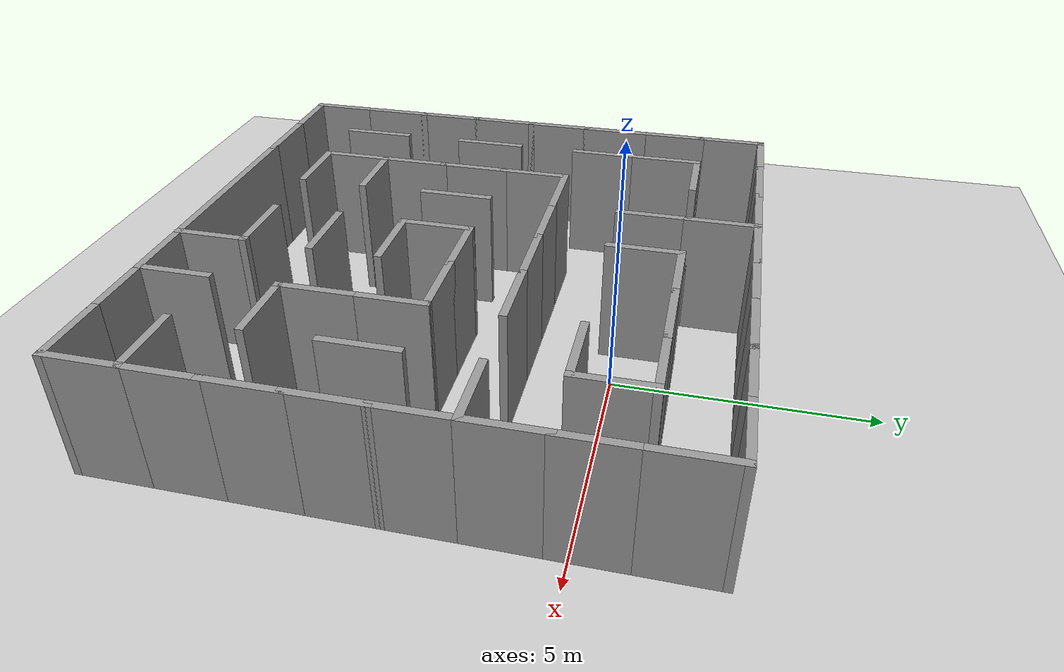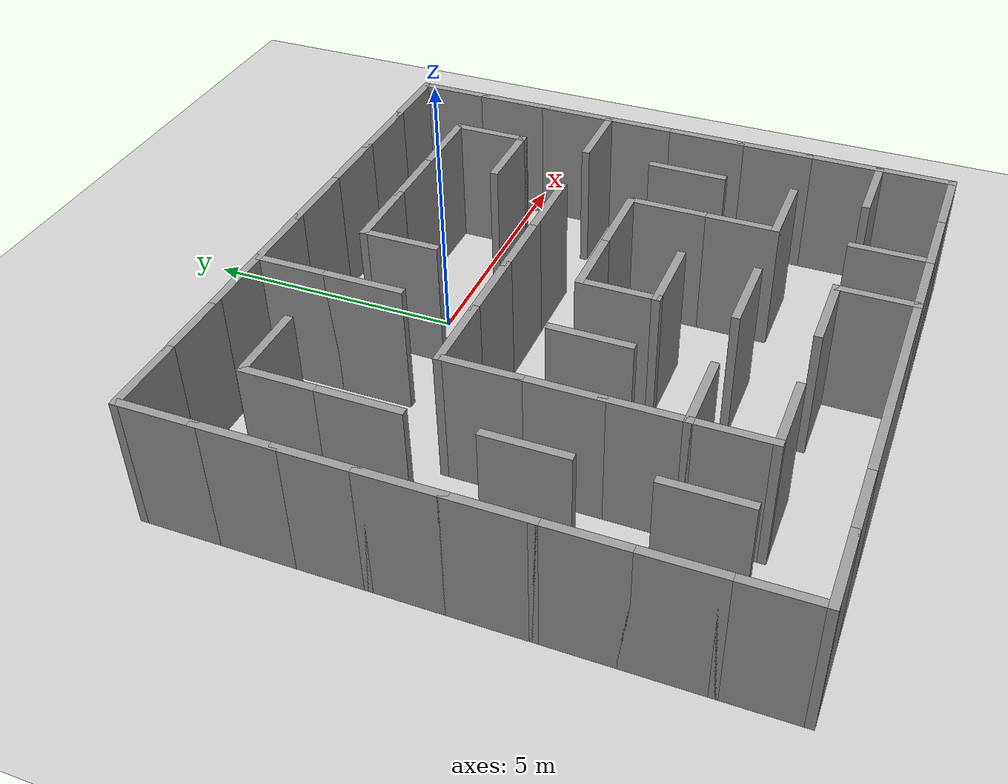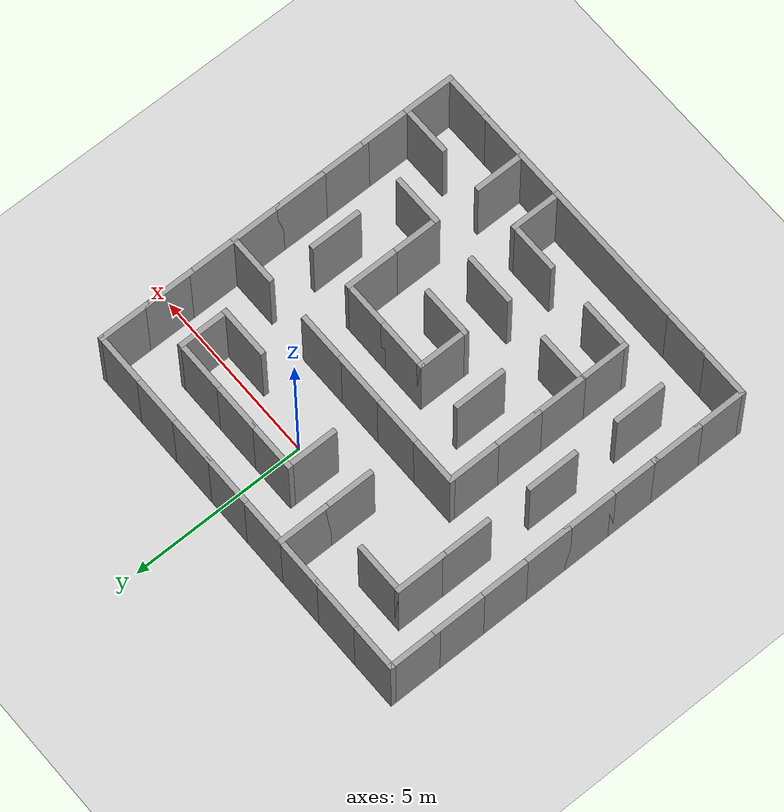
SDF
<sdf version="1.7">
 <world name="default">
  <model name="ground_plane">
   <static>1</static>
   <link name="link">
    <collision name="collision">
     <geometry><plane><normal>0 0 1</normal><size>100 100</size></plane></geometry>
     <surface><friction><ode><mu>100</mu><mu2>50</mu2></ode></friction></surface>
    </collision>
    <visual name="visual">
     <cast_shadows>0</cast_shadows>
     <geometry><plane><normal>0 0 1</normal><size>100 100</size></plane></geometry>
     <material>
      <script><uri>file://media/materials/scripts/gazebo.material</uri><name>Gazebo/Grey</name></script>
     </material>
    </visual>
   </link>
  </model>
  <light name="sun" type="directional">
   <pose>0 0 10 0 -0 0</pose>
   <diffuse>0.8 0.8 0.8 1</diffuse>
   <specular>0.2 0.2 0.2 1</specular>
   <attenuation>
    <range>1000</range>
    <constant>0.9</constant>
    <linear>0.01</linear>
    <quadratic>0.001</quadratic>
   </attenuation>
   <direction>-0.5 0.1 -0.9</direction>
   <spot><inner_angle>0</inner_angle><outer_angle>0</outer_angle><falloff>0</falloff></spot>
  </light>
  <scene><shadows>0</shadows><ambient>0.4 0.4 0.4 1</ambient><background>0.7 0.7 0.7 1</background></scene>
  <physics type="ode">
   <real_time_update_rate>1000</real_time_update_rate>
   <max_step_size>0.001</max_step_size>
   <real_time_factor>1</real_time_factor>
   <ode>
    <solver>
     <type>quick</type>
     <iters>150</iters>
     <precon_iters>0</precon_iters>
     <sor>1.4</sor>
     <use_dynamic_moi_rescaling>1</use_dynamic_moi_rescaling>
    </solver>
    <constraints>
     <cfm>1e-05</cfm>
     <erp>0.2</erp>
     <contact_max_correcting_vel>2000</contact_max_correcting_vel>
     <contact_surface_layer>0.01</contact_surface_layer>
    </constraints>
   </ode>
  </physics>
  <gravity>0 0 -9.8</gravity>
  <magnetic_field>6e-06 2.3e-05 -4.2e-05</magnetic_field>
  <atmosphere type="adiabatic"/>
  <audio><device>default</device></audio>
  <spherical_coordinates>
   <surface_model>EARTH_WGS84</surface_model>
   <latitude_deg>0</latitude_deg>
   <longitude_deg>0</longitude_deg>
   <elevation>0</elevation>
   <heading_deg>0</heading_deg>
  </spherical_coordinates>
  <model name="test_maze_v2">
   <pose>-1 -3 0 0 -0 0</pose>
   <link name="Wall_0">
    <collision name="Wall_0_Collision">
     <geometry><box><size>1.5 0.15 2.5</size></box></geometry>
     <pose>0 0 1.25 0 -0 0</pose>
    </collision>
    <visual name="Wall_0_Visual">
     <pose>0 0 1.25 0 -0 0</pose>
     <geometry><box><size>1.5 0.15 2.5</size></box></geometry>
     <material>
      <script><uri>file://media/materials/scripts/gazebo.material</uri><name>Gazebo/Grey</name></script>
      <ambient>1 1 1 1</ambient>
     </material>
     <meta><layer>0</layer></meta>
    </visual>
    <pose>0.675 -1.35 0 0 -0 3.14159</pose>
   </link>
   <link name="Wall_1">
    <collision name="Wall_1_Collision">
     <geometry><box><size>1.5 0.15 2.5</size></box></geometry>
     <pose>0 0 1.25 0 -0 0</pose>
    </collision>
    <visual name="Wall_1_Visual">
     <pose>0 0 1.25 0 -0 0</pose>
     <geometry><box><size>1.5 0.15 2.5</size></box></geometry>
     <material>
      <script><uri>file://media/materials/scripts/gazebo.material</uri><name>Gazebo/Grey</name></script>
      <ambient>1 1 1 1</ambient>
     </material>
     <meta><layer>0</layer></meta>
    </visual>
    <pose>-0 -0.675 0 0 -0 1.5708</pose>
   </link>
   <link name="Wall_10">
    <collision name="Wall_10_Collision">
     <geometry><box><size>1.5 0.15 2.5</size></box></geometry>
     <pose>0 0 1.25 0 -0 0</pose>
    </collision>
    <visual name="Wall_10_Visual">
     <pose>0 0 1.25 0 -0 0</pose>
     <geometry><box><size>1.5 0.15 2.5</size></box></geometry>
     <material>
      <script><uri>file://media/materials/scripts/gazebo.material</uri><name>Gazebo/Grey</name></script>
      <ambient>1 1 1 1</ambient>
     </material>
     <meta><layer>0</layer></meta>
    </visual>
    <pose>5.4 -0.675 0 0 -0 -1.5708</pose>
   </link>
   <link name="Wall_108">
    <collision name="Wall_108_Collision">
     <geometry><box><size>1.5 0.15 2.5</size></box></geometry>
     <pose>0 0 1.25 0 -0 0</pose>
    </collision>
    <visual name="Wall_108_Visual">
     <pose>0 0 1.25 0 -0 0</pose>
     <geometry><box><size>1.5 0.15 2.5</size></box></geometry>
     <material>
      <script><uri>file://media/materials/scripts/gazebo.material</uri><name>Gazebo/Grey</name></script>
      <ambient>1 1 1 1</ambient>
     </material>
     <meta><layer>0</layer></meta>
    </visual>
    <pose>-5.4 -0.652 0 0 -0 -1.5708</pose>
   </link>
   <link name="Wall_11">
    <collision name="Wall_11_Collision">
     <geometry><box><size>1.5 0.15 2.5</size></box></geometry>
     <pose>0 0 1.25 0 -0 0</pose>
    </collision>
    <visual name="Wall_11_Visual">
     <pose>0 0 1.25 0 -0 0</pose>
     <geometry><box><size>1.5 0.15 2.5</size></box></geometry>
     <material>
      <script><uri>file://media/materials/scripts/gazebo.material</uri><name>Gazebo/Grey</name></script>
      <ambient>1 1 1 1</ambient>
     </material>
     <meta><layer>0</layer></meta>
    </visual>
    <pose>5.4 -2.025 0 0 -0 -1.5708</pose>
   </link>
   <link name="Wall_113">
    <collision name="Wall_113_Collision">
     <geometry><box><size>1.5 0.15 2.5</size></box></geometry>
     <pose>0 0 1.25 0 -0 0</pose>
    </collision>
    <visual name="Wall_113_Visual">
     <pose>0 0 1.25 0 -0 0</pose>
     <geometry><box><size>1.5 0.15 2.5</size></box></geometry>
     <material>
      <script><uri>file://media/materials/scripts/gazebo.material</uri><name>Gazebo/Grey</name></script>
      <ambient>1 1 1 1</ambient>
     </material>
     <meta><layer>0</layer></meta>
    </visual>
    <pose>-5.4 -3.352 0 0 -0 -1.5708</pose>
   </link>
   <link name="Wall_122">
    <collision name="Wall_122_Collision">
     <geometry><box><size>1.5 0.15 2.5</size></box></geometry>
     <pose>0 0 1.25 0 -0 0</pose>
    </collision>
    <visual name="Wall_122_Visual">
     <pose>0 0 1.25 0 -0 0</pose>
     <geometry><box><size>1.5 0.15 2.5</size></box></geometry>
     <material>
      <script><uri>file://media/materials/scripts/gazebo.material</uri><name>Gazebo/Grey</name></script>
      <ambient>1 1 1 1</ambient>
     </material>
     <meta><layer>0</layer></meta>
    </visual>
    <pose>-3.375 -5.4 0 0 -0 3.14159</pose>
   </link>
   <link name="Wall_123">
    <collision name="Wall_123_Collision">
     <geometry><box><size>1.5 0.15 2.5</size></box></geometry>
     <pose>0 0 1.25 0 -0 0</pose>
    </collision>
    <visual name="Wall_123_Visual">
     <pose>0 0 1.25 0 -0 0</pose>
     <geometry><box><size>1.5 0.15 2.5</size></box></geometry>
     <material>
      <script><uri>file://media/materials/scripts/gazebo.material</uri><name>Gazebo/Grey</name></script>
      <ambient>1 1 1 1</ambient>
     </material>
     <meta><layer>0</layer></meta>
    </visual>
    <pose>-4.725 -5.4 0 0 -0 3.14159</pose>
   </link>
   <link name="Wall_124">
    <collision name="Wall_124_Collision">
     <geometry><box><size>1.523 0.15 2.5</size></box></geometry>
     <pose>0 0 1.25 0 -0 0</pose>
    </collision>
    <visual name="Wall_124_Visual">
     <pose>0 0 1.25 0 -0 0</pose>
     <geometry><box><size>1.523 0.15 2.5</size></box></geometry>
     <material>
      <script><uri>file://media/materials/scripts/gazebo.material</uri><name>Gazebo/Grey</name></script>
      <ambient>1 1 1 1</ambient>
     </material>
     <meta><layer>0</layer></meta>
    </visual>
    <pose>-5.4 -4.7135 0 0 -0 1.5708</pose>
   </link>
   <link name="Wall_127">
    <collision name="Wall_127_Collision">
     <geometry><box><size>1.5 0.15 2.5</size></box></geometry>
     <pose>0 0 1.25 0 -0 0</pose>
    </collision>
    <visual name="Wall_127_Visual">
     <pose>0 0 1.25 0 -0 0</pose>
     <geometry><box><size>1.5 0.15 2.5</size></box></geometry>
     <material>
      <script><uri>file://media/materials/scripts/gazebo.material</uri><name>Gazebo/Grey</name></script>
      <ambient>1 1 1 1</ambient>
     </material>
     <meta><layer>0</layer></meta>
    </visual>
    <pose>-4.05 -3.352 0 0 -0 1.5708</pose>
   </link>
   <link name="Wall_129">
    <collision name="Wall_129_Collision">
     <geometry><box><size>1.5 0.15 2.5</size></box></geometry>
     <pose>0 0 1.25 0 -0 0</pose>
    </collision>
    <visual name="Wall_129_Visual">
     <pose>0 0 1.25 0 -0 0</pose>
     <geometry><box><size>1.5 0.15 2.5</size></box></geometry>
     <material>
      <script><uri>file://media/materials/scripts/gazebo.material</uri><name>Gazebo/Grey</name></script>
      <ambient>1 1 1 1</ambient>
     </material>
     <meta><layer>0</layer></meta>
    </visual>
    <pose>-5.4 -2.002 0 0 -0 1.5708</pose>
   </link>
   <link name="Wall_131">
    <collision name="Wall_131_Collision">
     <geometry><box><size>1.5 0.15 2.5</size></box></geometry>
     <pose>0 0 1.25 0 -0 0</pose>
    </collision>
    <visual name="Wall_131_Visual">
     <pose>0 0 1.25 0 -0 0</pose>
     <geometry><box><size>1.5 0.15 2.5</size></box></geometry>
     <material>
      <script><uri>file://media/materials/scripts/gazebo.material</uri><name>Gazebo/Grey</name></script>
      <ambient>1 1 1 1</ambient>
     </material>
     <meta><layer>0</layer></meta>
    </visual>
    <pose>-4.05 -0.652 0 0 -0 1.5708</pose>
   </link>
   <link name="Wall_133">
    <collision name="Wall_133_Collision">
     <geometry><box><size>1.5 0.15 2.5</size></box></geometry>
     <pose>0 0 1.25 0 -0 0</pose>
    </collision>
    <visual name="Wall_133_Visual">
     <pose>0 0 1.25 0 -0 0</pose>
     <geometry><box><size>1.5 0.15 2.5</size></box></geometry>
     <material>
      <script><uri>file://media/materials/scripts/gazebo.material</uri><name>Gazebo/Grey</name></script>
      <ambient>1 1 1 1</ambient>
     </material>
     <meta><layer>0</layer></meta>
    </visual>
    <pose>-5.4 0.698 0 0 -0 1.5708</pose>
   </link>
   <link name="Wall_140">
    <collision name="Wall_140_Collision">
     <geometry><box><size>1.5 0.15 2.5</size></box></geometry>
     <pose>0 0 1.25 0 -0 0</pose>
    </collision>
    <visual name="Wall_140_Visual">
     <pose>0 0 1.25 0 -0 0</pose>
     <geometry><box><size>1.5 0.15 2.5</size></box></geometry>
     <material>
      <script><uri>file://media/materials/scripts/gazebo.material</uri><name>Gazebo/Grey</name></script>
      <ambient>1 1 1 1</ambient>
     </material>
     <meta><layer>0</layer></meta>
    </visual>
    <pose>-4.05 2.025 0 0 -0 1.5708</pose>
   </link>
   <link name="Wall_143">
    <collision name="Wall_143_Collision">
     <geometry><box><size>1.5 0.15 2.5</size></box></geometry>
     <pose>0 0 1.25 0 -0 0</pose>
    </collision>
    <visual name="Wall_143_Visual">
     <pose>0 0 1.25 0 -0 0</pose>
     <geometry><box><size>1.5 0.15 2.5</size></box></geometry>
     <material>
      <script><uri>file://media/materials/scripts/gazebo.material</uri><name>Gazebo/Grey</name></script>
      <ambient>1 1 1 1</ambient>
     </material>
     <meta><layer>0</layer></meta>
    </visual>
    <pose>-4.05 3.375 0 0 -0 1.5708</pose>
   </link>
   <link name="Wall_144">
    <collision name="Wall_144_Collision">
     <geometry><box><size>1.5 0.15 2.5</size></box></geometry>
     <pose>0 0 1.25 0 -0 0</pose>
    </collision>
    <visual name="Wall_144_Visual">
     <pose>0 0 1.25 0 -0 0</pose>
     <geometry><box><size>1.5 0.15 2.5</size></box></geometry>
     <material>
      <script><uri>file://media/materials/scripts/gazebo.material</uri><name>Gazebo/Grey</name></script>
      <ambient>1 1 1 1</ambient>
     </material>
     <meta><layer>0</layer></meta>
    </visual>
    <pose>-3.375 4.05 0 0 -0 0</pose>
   </link>
   <link name="Wall_146">
    <collision name="Wall_146_Collision">
     <geometry><box><size>1.5 0.15 2.5</size></box></geometry>
     <pose>0 0 1.25 0 -0 0</pose>
    </collision>
    <visual name="Wall_146_Visual">
     <pose>0 0 1.25 0 -0 0</pose>
     <geometry><box><size>1.5 0.15 2.5</size></box></geometry>
     <material>
      <script><uri>file://media/materials/scripts/gazebo.material</uri><name>Gazebo/Grey</name></script>
      <ambient>1 1 1 1</ambient>
     </material>
     <meta><layer>0</layer></meta>
    </visual>
    <pose>0.015209 3.375 0 0 -0 -1.5708</pose>
   </link>
   <link name="Wall_15">
    <collision name="Wall_15_Collision">
     <geometry><box><size>1.5 0.15 2.5</size></box></geometry>
     <pose>0 0 1.25 0 -0 0</pose>
    </collision>
    <visual name="Wall_15_Visual">
     <pose>0 0 1.25 0 -0 0</pose>
     <geometry><box><size>1.5 0.15 2.5</size></box></geometry>
     <material>
      <script><uri>file://media/materials/scripts/gazebo.material</uri><name>Gazebo/Grey</name></script>
      <ambient>1 1 1 1</ambient>
     </material>
     <meta><layer>0</layer></meta>
    </visual>
    <pose>5.4 0.675 0 0 -0 1.5708</pose>
   </link>
   <link name="Wall_152">
    <collision name="Wall_152_Collision">
     <geometry><box><size>1.5 0.15 2.5</size></box></geometry>
     <pose>0 0 1.25 0 -0 0</pose>
    </collision>
    <visual name="Wall_152_Visual">
     <pose>0 0 1.25 0 -0 0</pose>
     <geometry><box><size>1.5 0.15 2.5</size></box></geometry>
     <material>
      <script><uri>file://media/materials/scripts/gazebo.material</uri><name>Gazebo/Grey</name></script>
      <ambient>1 1 1 1</ambient>
     </material>
     <meta><layer>0</layer></meta>
    </visual>
    <pose>3.375 2.7 0 0 -0 0</pose>
   </link>
   <link name="Wall_153">
    <collision name="Wall_153_Collision">
     <geometry><box><size>1.5 0.15 2.5</size></box></geometry>
     <pose>0 0 1.25 0 -0 0</pose>
    </collision>
    <visual name="Wall_153_Visual">
     <pose>0 0 1.25 0 -0 0</pose>
     <geometry><box><size>1.5 0.15 2.5</size></box></geometry>
     <material>
      <script><uri>file://media/materials/scripts/gazebo.material</uri><name>Gazebo/Grey</name></script>
      <ambient>1 1 1 1</ambient>
     </material>
     <meta><layer>0</layer></meta>
    </visual>
    <pose>4.05 3.375 0 0 -0 1.5708</pose>
   </link>
   <link name="Wall_156">
    <collision name="Wall_156_Collision">
     <geometry><box><size>1.5 0.15 2.5</size></box></geometry>
     <pose>0 0 1.25 0 -0 0</pose>
    </collision>
    <visual name="Wall_156_Visual">
     <pose>0 0 1.25 0 -0 0</pose>
     <geometry><box><size>1.5 0.15 2.5</size></box></geometry>
     <material>
      <script><uri>file://media/materials/scripts/gazebo.material</uri><name>Gazebo/Grey</name></script>
      <ambient>1 1 1 1</ambient>
     </material>
     <meta><layer>0</layer></meta>
    </visual>
    <pose>-1.35 4.725 0 0 -0 1.5708</pose>
   </link>
   <link name="Wall_158">
    <collision name="Wall_158_Collision">
     <geometry><box><size>1.5 0.15 2.5</size></box></geometry>
     <pose>0 0 1.25 0 -0 0</pose>
    </collision>
    <visual name="Wall_158_Visual">
     <pose>0 0 1.25 0 -0 0</pose>
     <geometry><box><size>1.5 0.15 2.5</size></box></geometry>
     <material>
      <script><uri>file://media/materials/scripts/gazebo.material</uri><name>Gazebo/Grey</name></script>
      <ambient>1 1 1 1</ambient>
     </material>
     <meta><layer>0</layer></meta>
    </visual>
    <pose>-1.35 3.375 0 0 -0 -1.5708</pose>
   </link>
   <link name="Wall_16">
    <collision name="Wall_16_Collision">
     <geometry><box><size>1.5 0.15 2.5</size></box></geometry>
     <pose>0 0 1.25 0 -0 0</pose>
    </collision>
    <visual name="Wall_16_Visual">
     <pose>0 0 1.25 0 -0 0</pose>
     <geometry><box><size>1.5 0.15 2.5</size></box></geometry>
     <material>
      <script><uri>file://media/materials/scripts/gazebo.material</uri><name>Gazebo/Grey</name></script>
      <ambient>1 1 1 1</ambient>
     </material>
     <meta><layer>0</layer></meta>
    </visual>
    <pose>4.725 1.35 0 0 -0 3.14159</pose>
   </link>
   <link name="Wall_18">
    <collision name="Wall_18_Collision">
     <geometry><box><size>1.5 0.15 2.5</size></box></geometry>
     <pose>0 0 1.25 0 -0 0</pose>
    </collision>
    <visual name="Wall_18_Visual">
     <pose>0 0 1.25 0 -0 0</pose>
     <geometry><box><size>1.5 0.15 2.5</size></box></geometry>
     <material>
      <script><uri>file://media/materials/scripts/gazebo.material</uri><name>Gazebo/Grey</name></script>
      <ambient>1 1 1 1</ambient>
     </material>
     <meta><layer>0</layer></meta>
    </visual>
    <pose>2.025 1.35 0 0 -0 3.14159</pose>
   </link>
   <link name="Wall_19">
    <collision name="Wall_19_Collision">
     <geometry><box><size>1.5 0.15 2.5</size></box></geometry>
     <pose>0 0 1.25 0 -0 0</pose>
    </collision>
    <visual name="Wall_19_Visual">
     <pose>0 0 1.25 0 -0 0</pose>
     <geometry><box><size>1.5 0.15 2.5</size></box></geometry>
     <material>
      <script><uri>file://media/materials/scripts/gazebo.material</uri><name>Gazebo/Grey</name></script>
      <ambient>1 1 1 1</ambient>
     </material>
     <meta><layer>0</layer></meta>
    </visual>
    <pose>0.675 1.35 0 0 -0 3.14159</pose>
   </link>
   <link name="Wall_2">
    <collision name="Wall_2_Collision">
     <geometry><box><size>1.5 0.15 2.5</size></box></geometry>
     <pose>0 0 1.25 0 -0 0</pose>
    </collision>
    <visual name="Wall_2_Visual">
     <pose>0 0 1.25 0 -0 0</pose>
     <geometry><box><size>1.5 0.15 2.5</size></box></geometry>
     <material>
      <script><uri>file://media/materials/scripts/gazebo.material</uri><name>Gazebo/Grey</name></script>
      <ambient>1 1 1 1</ambient>
     </material>
     <meta><layer>0</layer></meta>
    </visual>
    <pose>0.675 -0 0 0 -0 0</pose>
   </link>
   <link name="Wall_20">
    <collision name="Wall_20_Collision">
     <geometry><box><size>1.5 0.15 2.5</size></box></geometry>
     <pose>0 0 1.25 0 -0 0</pose>
    </collision>
    <visual name="Wall_20_Visual">
     <pose>0 0 1.25 0 -0 0</pose>
     <geometry><box><size>1.5 0.15 2.5</size></box></geometry>
     <material>
      <script><uri>file://media/materials/scripts/gazebo.material</uri><name>Gazebo/Grey</name></script>
      <ambient>1 1 1 1</ambient>
     </material>
     <meta><layer>0</layer></meta>
    </visual>
    <pose>-0.675 1.35 0 0 -0 3.14159</pose>
   </link>
   <link name="Wall_22">
    <collision name="Wall_22_Collision">
     <geometry><box><size>1.5 0.15 2.5</size></box></geometry>
     <pose>0 0 1.25 0 -0 0</pose>
    </collision>
    <visual name="Wall_22_Visual">
     <pose>0 0 1.25 0 -0 0</pose>
     <geometry><box><size>1.5 0.15 2.5</size></box></geometry>
     <material>
      <script><uri>file://media/materials/scripts/gazebo.material</uri><name>Gazebo/Grey</name></script>
      <ambient>1 1 1 1</ambient>
     </material>
     <meta><layer>0</layer></meta>
    </visual>
    <pose>-1.35 -0.675 0 0 -0 -1.5708</pose>
   </link>
   <link name="Wall_24">
    <collision name="Wall_24_Collision">
     <geometry><box><size>1.5 0.15 2.5</size></box></geometry>
     <pose>0 0 1.25 0 -0 0</pose>
    </collision>
    <visual name="Wall_24_Visual">
     <pose>0 0 1.25 0 -0 0</pose>
     <geometry><box><size>1.5 0.15 2.5</size></box></geometry>
     <material>
      <script><uri>file://media/materials/scripts/gazebo.material</uri><name>Gazebo/Grey</name></script>
      <ambient>1 1 1 1</ambient>
     </material>
     <meta><layer>0</layer></meta>
    </visual>
    <pose>-2.025 1.35 0 0 -0 3.14159</pose>
   </link>
   <link name="Wall_25">
    <collision name="Wall_25_Collision">
     <geometry><box><size>1.5 0.15 2.5</size></box></geometry>
     <pose>0 0 1.25 0 -0 0</pose>
    </collision>
    <visual name="Wall_25_Visual">
     <pose>0 0 1.25 0 -0 0</pose>
     <geometry><box><size>1.5 0.15 2.5</size></box></geometry>
     <material>
      <script><uri>file://media/materials/scripts/gazebo.material</uri><name>Gazebo/Grey</name></script>
      <ambient>1 1 1 1</ambient>
     </material>
     <meta><layer>0</layer></meta>
    </visual>
    <pose>-2.7 0.675 0 0 -0 -1.5708</pose>
   </link>
   <link name="Wall_26">
    <collision name="Wall_26_Collision">
     <geometry><box><size>1.5 0.15 2.5</size></box></geometry>
     <pose>0 0 1.25 0 -0 0</pose>
    </collision>
    <visual name="Wall_26_Visual">
     <pose>0 0 1.25 0 -0 0</pose>
     <geometry><box><size>1.5 0.15 2.5</size></box></geometry>
     <material>
      <script><uri>file://media/materials/scripts/gazebo.material</uri><name>Gazebo/Grey</name></script>
      <ambient>1 1 1 1</ambient>
     </material>
     <meta><layer>0</layer></meta>
    </visual>
    <pose>-2.7 -0.675 0 0 -0 -1.5708</pose>
   </link>
   <link name="Wall_27">
    <collision name="Wall_27_Collision">
     <geometry><box><size>1.5 0.15 2.5</size></box></geometry>
     <pose>0 0 1.25 0 -0 0</pose>
    </collision>
    <visual name="Wall_27_Visual">
     <pose>0 0 1.25 0 -0 0</pose>
     <geometry><box><size>1.5 0.15 2.5</size></box></geometry>
     <material>
      <script><uri>file://media/materials/scripts/gazebo.material</uri><name>Gazebo/Grey</name></script>
      <ambient>1 1 1 1</ambient>
     </material>
     <meta><layer>0</layer></meta>
    </visual>
    <pose>-2.7 -2.025 0 0 -0 -1.5708</pose>
   </link>
   <link name="Wall_29">
    <collision name="Wall_29_Collision">
     <geometry><box><size>1.5 0.15 2.5</size></box></geometry>
     <pose>0 0 1.25 0 -0 0</pose>
    </collision>
    <visual name="Wall_29_Visual">
     <pose>0 0 1.25 0 -0 0</pose>
     <geometry><box><size>1.5 0.15 2.5</size></box></geometry>
     <material>
      <script><uri>file://media/materials/scripts/gazebo.material</uri><name>Gazebo/Grey</name></script>
      <ambient>1 1 1 1</ambient>
     </material>
     <meta><layer>0</layer></meta>
    </visual>
    <pose>-2.025 -2.7 0 0 -0 0</pose>
   </link>
   <link name="Wall_3">
    <collision name="Wall_3_Collision">
     <geometry><box><size>1.5 0.15 2.5</size></box></geometry>
     <pose>0 0 1.25 0 -0 0</pose>
    </collision>
    <visual name="Wall_3_Visual">
     <pose>0 0 1.25 0 -0 0</pose>
     <geometry><box><size>1.5 0.15 2.5</size></box></geometry>
     <material>
      <script><uri>file://media/materials/scripts/gazebo.material</uri><name>Gazebo/Grey</name></script>
      <ambient>1 1 1 1</ambient>
     </material>
     <meta><layer>0</layer></meta>
    </visual>
    <pose>2.025 -0 0 0 -0 0</pose>
   </link>
   <link name="Wall_32">
    <collision name="Wall_32_Collision">
     <geometry><box><size>1.5 0.15 2.5</size></box></geometry>
     <pose>0 0 1.25 0 -0 0</pose>
    </collision>
    <visual name="Wall_32_Visual">
     <pose>0 0 1.25 0 -0 0</pose>
     <geometry><box><size>1.5 0.15 2.5</size></box></geometry>
     <material>
      <script><uri>file://media/materials/scripts/gazebo.material</uri><name>Gazebo/Grey</name></script>
      <ambient>1 1 1 1</ambient>
     </material>
     <meta><layer>0</layer></meta>
    </visual>
    <pose>0.675 -2.7 0 0 -0 0</pose>
   </link>
   <link name="Wall_35">
    <collision name="Wall_35_Collision">
     <geometry><box><size>1.5 0.15 2.5</size></box></geometry>
     <pose>0 0 1.25 0 -0 0</pose>
    </collision>
    <visual name="Wall_35_Visual">
     <pose>0 0 1.25 0 -0 0</pose>
     <geometry><box><size>1.5 0.15 2.5</size></box></geometry>
     <material>
      <script><uri>file://media/materials/scripts/gazebo.material</uri><name>Gazebo/Grey</name></script>
      <ambient>1 1 1 1</ambient>
     </material>
     <meta><layer>0</layer></meta>
    </visual>
    <pose>5.4 -3.375 0 0 -0 -1.5708</pose>
   </link>
   <link name="Wall_37">
    <collision name="Wall_37_Collision">
     <geometry><box><size>1.5 0.15 2.5</size></box></geometry>
     <pose>0 0 1.25 0 -0 0</pose>
    </collision>
    <visual name="Wall_37_Visual">
     <pose>0 0 1.25 0 -0 0</pose>
     <geometry><box><size>1.5 0.15 2.5</size></box></geometry>
     <material>
      <script><uri>file://media/materials/scripts/gazebo.material</uri><name>Gazebo/Grey</name></script>
      <ambient>1 1 1 1</ambient>
     </material>
     <meta><layer>0</layer></meta>
    </visual>
    <pose>4.725 -4.05 0 0 -0 3.14159</pose>
   </link>
   <link name="Wall_39">
    <collision name="Wall_39_Collision">
     <geometry><box><size>1.5 0.15 2.5</size></box></geometry>
     <pose>0 0 1.25 0 -0 0</pose>
    </collision>
    <visual name="Wall_39_Visual">
     <pose>0 0 1.25 0 -0 0</pose>
     <geometry><box><size>1.5 0.15 2.5</size></box></geometry>
     <material>
      <script><uri>file://media/materials/scripts/gazebo.material</uri><name>Gazebo/Grey</name></script>
      <ambient>1 1 1 1</ambient>
     </material>
     <meta><layer>0</layer></meta>
    </visual>
    <pose>5.4 -4.725 0 0 -0 -1.5708</pose>
   </link>
   <link name="Wall_4">
    <collision name="Wall_4_Collision">
     <geometry><box><size>1.5 0.15 2.5</size></box></geometry>
     <pose>0 0 1.25 0 -0 0</pose>
    </collision>
    <visual name="Wall_4_Visual">
     <pose>0 0 1.25 0 -0 0</pose>
     <geometry><box><size>1.5 0.15 2.5</size></box></geometry>
     <material>
      <script><uri>file://media/materials/scripts/gazebo.material</uri><name>Gazebo/Grey</name></script>
      <ambient>1 1 1 1</ambient>
     </material>
     <meta><layer>0</layer></meta>
    </visual>
    <pose>2.7 -0.675 0 0 -0 -1.5708</pose>
   </link>
   <link name="Wall_40">
    <collision name="Wall_40_Collision">
     <geometry><box><size>1.5 0.15 2.5</size></box></geometry>
     <pose>0 0 1.25 0 -0 0</pose>
    </collision>
    <visual name="Wall_40_Visual">
     <pose>0 0 1.25 0 -0 0</pose>
     <geometry><box><size>1.5 0.15 2.5</size></box></geometry>
     <material>
      <script><uri>file://media/materials/scripts/gazebo.material</uri><name>Gazebo/Grey</name></script>
      <ambient>1 1 1 1</ambient>
     </material>
     <meta><layer>0</layer></meta>
    </visual>
    <pose>4.725 -5.4 0 0 -0 3.14159</pose>
   </link>
   <link name="Wall_41">
    <collision name="Wall_41_Collision">
     <geometry><box><size>1.5 0.15 2.5</size></box></geometry>
     <pose>0 0 1.25 0 -0 0</pose>
    </collision>
    <visual name="Wall_41_Visual">
     <pose>0 0 1.25 0 -0 0</pose>
     <geometry><box><size>1.5 0.15 2.5</size></box></geometry>
     <material>
      <script><uri>file://media/materials/scripts/gazebo.material</uri><name>Gazebo/Grey</name></script>
      <ambient>1 1 1 1</ambient>
     </material>
     <meta><layer>0</layer></meta>
    </visual>
    <pose>3.375 -5.4 0 0 -0 3.14159</pose>
   </link>
   <link name="Wall_42">
    <collision name="Wall_42_Collision">
     <geometry><box><size>1.5 0.15 2.5</size></box></geometry>
     <pose>0 0 1.25 0 -0 0</pose>
    </collision>
    <visual name="Wall_42_Visual">
     <pose>0 0 1.25 0 -0 0</pose>
     <geometry><box><size>1.5 0.15 2.5</size></box></geometry>
     <material>
      <script><uri>file://media/materials/scripts/gazebo.material</uri><name>Gazebo/Grey</name></script>
      <ambient>1 1 1 1</ambient>
     </material>
     <meta><layer>0</layer></meta>
    </visual>
    <pose>2.025 -5.4 0 0 -0 3.14159</pose>
   </link>
   <link name="Wall_43">
    <collision name="Wall_43_Collision">
     <geometry><box><size>1.5 0.15 2.5</size></box></geometry>
     <pose>0 0 1.25 0 -0 0</pose>
    </collision>
    <visual name="Wall_43_Visual">
     <pose>0 0 1.25 0 -0 0</pose>
     <geometry><box><size>1.5 0.15 2.5</size></box></geometry>
     <material>
      <script><uri>file://media/materials/scripts/gazebo.material</uri><name>Gazebo/Grey</name></script>
      <ambient>1 1 1 1</ambient>
     </material>
     <meta><layer>0</layer></meta>
    </visual>
    <pose>1.35 -4.725 0 0 -0 1.5708</pose>
   </link>
   <link name="Wall_46">
    <collision name="Wall_46_Collision">
     <geometry><box><size>1.5 0.15 2.5</size></box></geometry>
     <pose>0 0 1.25 0 -0 0</pose>
    </collision>
    <visual name="Wall_46_Visual">
     <pose>0 0 1.25 0 -0 0</pose>
     <geometry><box><size>1.5 0.15 2.5</size></box></geometry>
     <material>
      <script><uri>file://media/materials/scripts/gazebo.material</uri><name>Gazebo/Grey</name></script>
      <ambient>1 1 1 1</ambient>
     </material>
     <meta><layer>0</layer></meta>
    </visual>
    <pose>2.7 -4.725 0 0 -0 -1.5708</pose>
   </link>
   <link name="Wall_48">
    <collision name="Wall_48_Collision">
     <geometry><box><size>1.5 0.15 2.5</size></box></geometry>
     <pose>0 0 1.25 0 -0 0</pose>
    </collision>
    <visual name="Wall_48_Visual">
     <pose>0 0 1.25 0 -0 0</pose>
     <geometry><box><size>1.5 0.15 2.5</size></box></geometry>
     <material>
      <script><uri>file://media/materials/scripts/gazebo.material</uri><name>Gazebo/Grey</name></script>
      <ambient>1 1 1 1</ambient>
     </material>
     <meta><layer>0</layer></meta>
    </visual>
    <pose>0.675 -4.05 0 0 -0 3.14159</pose>
   </link>
   <link name="Wall_5">
    <collision name="Wall_5_Collision">
     <geometry><box><size>1.5 0.15 2.5</size></box></geometry>
     <pose>0 0 1.25 0 -0 0</pose>
    </collision>
    <visual name="Wall_5_Visual">
     <pose>0 0 1.25 0 -0 0</pose>
     <geometry><box><size>1.5 0.15 2.5</size></box></geometry>
     <material>
      <script><uri>file://media/materials/scripts/gazebo.material</uri><name>Gazebo/Grey</name></script>
      <ambient>1 1 1 1</ambient>
     </material>
     <meta><layer>0</layer></meta>
    </visual>
    <pose>2.7 -2.025 0 0 -0 -1.5708</pose>
   </link>
   <link name="Wall_50">
    <collision name="Wall_50_Collision">
     <geometry><box><size>1.5 0.15 2.5</size></box></geometry>
     <pose>0 0 1.25 0 -0 0</pose>
    </collision>
    <visual name="Wall_50_Visual">
     <pose>0 0 1.25 0 -0 0</pose>
     <geometry><box><size>1.5 0.15 2.5</size></box></geometry>
     <material>
      <script><uri>file://media/materials/scripts/gazebo.material</uri><name>Gazebo/Grey</name></script>
      <ambient>1 1 1 1</ambient>
     </material>
     <meta><layer>0</layer></meta>
    </visual>
    <pose>-2.025 -4.05 0 0 -0 3.14159</pose>
   </link>
   <link name="Wall_51">
    <collision name="Wall_51_Collision">
     <geometry><box><size>1.5 0.15 2.5</size></box></geometry>
     <pose>0 0 1.25 0 -0 0</pose>
    </collision>
    <visual name="Wall_51_Visual">
     <pose>0 0 1.25 0 -0 0</pose>
     <geometry><box><size>1.5 0.15 2.5</size></box></geometry>
     <material>
      <script><uri>file://media/materials/scripts/gazebo.material</uri><name>Gazebo/Grey</name></script>
      <ambient>1 1 1 1</ambient>
     </material>
     <meta><layer>0</layer></meta>
    </visual>
    <pose>-2.7 -3.375 0 0 -0 1.5708</pose>
   </link>
   <link name="Wall_54">
    <collision name="Wall_54_Collision">
     <geometry><box><size>4.2 0.15 2.5</size></box></geometry>
     <pose>0 0 1.25 0 -0 0</pose>
    </collision>
    <visual name="Wall_54_Visual">
     <pose>0 0 1.25 0 -0 0</pose>
     <geometry><box><size>4.2 0.15 2.5</size></box></geometry>
     <material>
      <script><uri>file://media/materials/scripts/gazebo.material</uri><name>Gazebo/Grey</name></script>
      <ambient>1 1 1 1</ambient>
     </material>
     <meta><layer>0</layer></meta>
    </visual>
    <pose>-0.675 -5.4 0 0 -0 0</pose>
   </link>
   <link name="Wall_56">
    <collision name="Wall_56_Collision">
     <geometry><box><size>1.5 0.15 2.5</size></box></geometry>
     <pose>0 0 1.25 0 -0 0</pose>
    </collision>
    <visual name="Wall_56_Visual">
     <pose>0 0 1.25 0 -0 0</pose>
     <geometry><box><size>1.5 0.15 2.5</size></box></geometry>
     <material>
      <script><uri>file://media/materials/scripts/gazebo.material</uri><name>Gazebo/Grey</name></script>
      <ambient>1 1 1 1</ambient>
     </material>
     <meta><layer>0</layer></meta>
    </visual>
    <pose>5.4 2.025 0 0 -0 1.5708</pose>
   </link>
   <link name="Wall_57">
    <collision name="Wall_57_Collision">
     <geometry><box><size>1.5 0.15 2.5</size></box></geometry>
     <pose>0 0 1.25 0 -0 0</pose>
    </collision>
    <visual name="Wall_57_Visual">
     <pose>0 0 1.25 0 -0 0</pose>
     <geometry><box><size>1.5 0.15 2.5</size></box></geometry>
     <material>
      <script><uri>file://media/materials/scripts/gazebo.material</uri><name>Gazebo/Grey</name></script>
      <ambient>1 1 1 1</ambient>
     </material>
     <meta><layer>0</layer></meta>
    </visual>
    <pose>5.4 3.375 0 0 -0 1.5708</pose>
   </link>
   <link name="Wall_6">
    <collision name="Wall_6_Collision">
     <geometry><box><size>1.5 0.15 2.5</size></box></geometry>
     <pose>0 0 1.25 0 -0 0</pose>
    </collision>
    <visual name="Wall_6_Visual">
     <pose>0 0 1.25 0 -0 0</pose>
     <geometry><box><size>1.5 0.15 2.5</size></box></geometry>
     <material>
      <script><uri>file://media/materials/scripts/gazebo.material</uri><name>Gazebo/Grey</name></script>
      <ambient>1 1 1 1</ambient>
     </material>
     <meta><layer>0</layer></meta>
    </visual>
    <pose>3.375 -2.7 0 0 -0 0</pose>
   </link>
   <link name="Wall_60">
    <collision name="Wall_60_Collision">
     <geometry><box><size>1.5 0.15 2.5</size></box></geometry>
     <pose>0 0 1.25 0 -0 0</pose>
    </collision>
    <visual name="Wall_60_Visual">
     <pose>0 0 1.25 0 -0 0</pose>
     <geometry><box><size>1.5 0.15 2.5</size></box></geometry>
     <material>
      <script><uri>file://media/materials/scripts/gazebo.material</uri><name>Gazebo/Grey</name></script>
      <ambient>1 1 1 1</ambient>
     </material>
     <meta><layer>0</layer></meta>
    </visual>
    <pose>3.375 4.05 0 0 -0 3.14159</pose>
   </link>
   <link name="Wall_61">
    <collision name="Wall_61_Collision">
     <geometry><box><size>1.5 0.15 2.5</size></box></geometry>
     <pose>0 0 1.25 0 -0 0</pose>
    </collision>
    <visual name="Wall_61_Visual">
     <pose>0 0 1.25 0 -0 0</pose>
     <geometry><box><size>1.5 0.15 2.5</size></box></geometry>
     <material>
      <script><uri>file://media/materials/scripts/gazebo.material</uri><name>Gazebo/Grey</name></script>
      <ambient>1 1 1 1</ambient>
     </material>
     <meta><layer>0</layer></meta>
    </visual>
    <pose>2.025 4.05 0 0 -0 3.14159</pose>
   </link>
   <link name="Wall_62">
    <collision name="Wall_62_Collision">
     <geometry><box><size>1.48479 0.15 2.5</size></box></geometry>
     <pose>0 0 1.25 0 -0 0</pose>
    </collision>
    <visual name="Wall_62_Visual">
     <pose>0 0 1.25 0 -0 0</pose>
     <geometry><box><size>1.48479 0.15 2.5</size></box></geometry>
     <material>
      <script><uri>file://media/materials/scripts/gazebo.material</uri><name>Gazebo/Grey</name></script>
      <ambient>1 1 1 1</ambient>
     </material>
     <meta><layer>0</layer></meta>
    </visual>
    <pose>0.682604 4.05 0 0 -0 3.14159</pose>
   </link>
   <link name="Wall_67">
    <collision name="Wall_67_Collision">
     <geometry><box><size>1.5 0.15 2.5</size></box></geometry>
     <pose>0 0 1.25 0 -0 0</pose>
    </collision>
    <visual name="Wall_67_Visual">
     <pose>0 0 1.25 0 -0 0</pose>
     <geometry><box><size>1.5 0.15 2.5</size></box></geometry>
     <material>
      <script><uri>file://media/materials/scripts/gazebo.material</uri><name>Gazebo/Grey</name></script>
      <ambient>1 1 1 1</ambient>
     </material>
     <meta><layer>0</layer></meta>
    </visual>
    <pose>5.4 4.725 0 0 -0 1.5708</pose>
   </link>
   <link name="Wall_68">
    <collision name="Wall_68_Collision">
     <geometry><box><size>1.5 0.15 2.5</size></box></geometry>
     <pose>0 0 1.25 0 -0 0</pose>
    </collision>
    <visual name="Wall_68_Visual">
     <pose>0 0 1.25 0 -0 0</pose>
     <geometry><box><size>1.5 0.15 2.5</size></box></geometry>
     <material>
      <script><uri>file://media/materials/scripts/gazebo.material</uri><name>Gazebo/Grey</name></script>
      <ambient>1 1 1 1</ambient>
     </material>
     <meta><layer>0</layer></meta>
    </visual>
    <pose>4.725 5.4 0 0 -0 3.14159</pose>
   </link>
   <link name="Wall_69">
    <collision name="Wall_69_Collision">
     <geometry><box><size>1.5 0.15 2.5</size></box></geometry>
     <pose>0 0 1.25 0 -0 0</pose>
    </collision>
    <visual name="Wall_69_Visual">
     <pose>0 0 1.25 0 -0 0</pose>
     <geometry><box><size>1.5 0.15 2.5</size></box></geometry>
     <material>
      <script><uri>file://media/materials/scripts/gazebo.material</uri><name>Gazebo/Grey</name></script>
      <ambient>1 1 1 1</ambient>
     </material>
     <meta><layer>0</layer></meta>
    </visual>
    <pose>3.375 5.4 0 0 -0 3.14159</pose>
   </link>
   <link name="Wall_70">
    <collision name="Wall_70_Collision">
     <geometry><box><size>1.5 0.15 2.5</size></box></geometry>
     <pose>0 0 1.25 0 -0 0</pose>
    </collision>
    <visual name="Wall_70_Visual">
     <pose>0 0 1.25 0 -0 0</pose>
     <geometry><box><size>1.5 0.15 2.5</size></box></geometry>
     <material>
      <script><uri>file://media/materials/scripts/gazebo.material</uri><name>Gazebo/Grey</name></script>
      <ambient>1 1 1 1</ambient>
     </material>
     <meta><layer>0</layer></meta>
    </visual>
    <pose>2.025 5.4 0 0 -0 3.14159</pose>
   </link>
   <link name="Wall_71">
    <collision name="Wall_71_Collision">
     <geometry><box><size>1.5 0.15 2.5</size></box></geometry>
     <pose>0 0 1.25 0 -0 0</pose>
    </collision>
    <visual name="Wall_71_Visual">
     <pose>0 0 1.25 0 -0 0</pose>
     <geometry><box><size>1.5 0.15 2.5</size></box></geometry>
     <material>
      <script><uri>file://media/materials/scripts/gazebo.material</uri><name>Gazebo/Grey</name></script>
      <ambient>1 1 1 1</ambient>
     </material>
     <meta><layer>0</layer></meta>
    </visual>
    <pose>0.675 5.4 0 0 -0 3.14159</pose>
   </link>
   <link name="Wall_72">
    <collision name="Wall_72_Collision">
     <geometry><box><size>1.5 0.15 2.5</size></box></geometry>
     <pose>0 0 1.25 0 -0 0</pose>
    </collision>
    <visual name="Wall_72_Visual">
     <pose>0 0 1.25 0 -0 0</pose>
     <geometry><box><size>1.5 0.15 2.5</size></box></geometry>
     <material>
      <script><uri>file://media/materials/scripts/gazebo.material</uri><name>Gazebo/Grey</name></script>
      <ambient>1 1 1 1</ambient>
     </material>
     <meta><layer>0</layer></meta>
    </visual>
    <pose>-0.675 5.4 0 0 -0 3.14159</pose>
   </link>
   <link name="Wall_76">
    <collision name="Wall_76_Collision">
     <geometry><box><size>1.5 0.15 2.5</size></box></geometry>
     <pose>0 0 1.25 0 -0 0</pose>
    </collision>
    <visual name="Wall_76_Visual">
     <pose>0 0 1.25 0 -0 0</pose>
     <geometry><box><size>1.5 0.15 2.5</size></box></geometry>
     <material>
      <script><uri>file://media/materials/scripts/gazebo.material</uri><name>Gazebo/Grey</name></script>
      <ambient>1 1 1 1</ambient>
     </material>
     <meta><layer>0</layer></meta>
    </visual>
    <pose>-2.025 5.4 0 0 -0 3.14159</pose>
   </link>
   <link name="Wall_77">
    <collision name="Wall_77_Collision">
     <geometry><box><size>1.5 0.15 2.5</size></box></geometry>
     <pose>0 0 1.25 0 -0 0</pose>
    </collision>
    <visual name="Wall_77_Visual">
     <pose>0 0 1.25 0 -0 0</pose>
     <geometry><box><size>1.5 0.15 2.5</size></box></geometry>
     <material>
      <script><uri>file://media/materials/scripts/gazebo.material</uri><name>Gazebo/Grey</name></script>
      <ambient>1 1 1 1</ambient>
     </material>
     <meta><layer>0</layer></meta>
    </visual>
    <pose>-3.375 5.4 0 0 -0 3.14159</pose>
   </link>
   <link name="Wall_78">
    <collision name="Wall_78_Collision">
     <geometry><box><size>1.5 0.15 2.5</size></box></geometry>
     <pose>0 0 1.25 0 -0 0</pose>
    </collision>
    <visual name="Wall_78_Visual">
     <pose>0 0 1.25 0 -0 0</pose>
     <geometry><box><size>1.5 0.15 2.5</size></box></geometry>
     <material>
      <script><uri>file://media/materials/scripts/gazebo.material</uri><name>Gazebo/Grey</name></script>
      <ambient>1 1 1 1</ambient>
     </material>
     <meta><layer>0</layer></meta>
    </visual>
    <pose>-4.725 5.4 0 0 -0 3.14159</pose>
   </link>
   <link name="Wall_79">
    <collision name="Wall_79_Collision">
     <geometry><box><size>1.5 0.15 2.5</size></box></geometry>
     <pose>0 0 1.25 0 -0 0</pose>
    </collision>
    <visual name="Wall_79_Visual">
     <pose>0 0 1.25 0 -0 0</pose>
     <geometry><box><size>1.5 0.15 2.5</size></box></geometry>
     <material>
      <script><uri>file://media/materials/scripts/gazebo.material</uri><name>Gazebo/Grey</name></script>
      <ambient>1 1 1 1</ambient>
     </material>
     <meta><layer>0</layer></meta>
    </visual>
    <pose>-5.4 4.725 0 0 -0 -1.5708</pose>
   </link>
   <link name="Wall_8">
    <collision name="Wall_8_Collision">
     <geometry><box><size>1.5 0.15 2.5</size></box></geometry>
     <pose>0 0 1.25 0 -0 0</pose>
    </collision>
    <visual name="Wall_8_Visual">
     <pose>0 0 1.25 0 -0 0</pose>
     <geometry><box><size>1.5 0.15 2.5</size></box></geometry>
     <material>
      <script><uri>file://media/materials/scripts/gazebo.material</uri><name>Gazebo/Grey</name></script>
      <ambient>1 1 1 1</ambient>
     </material>
     <meta><layer>0</layer></meta>
    </visual>
    <pose>4.05 -0.675 0 0 -0 1.5708</pose>
   </link>
   <link name="Wall_80">
    <collision name="Wall_80_Collision">
     <geometry><box><size>1.5 0.15 2.5</size></box></geometry>
     <pose>0 0 1.25 0 -0 0</pose>
    </collision>
    <visual name="Wall_80_Visual">
     <pose>0 0 1.25 0 -0 0</pose>
     <geometry><box><size>1.5 0.15 2.5</size></box></geometry>
     <material>
      <script><uri>file://media/materials/scripts/gazebo.material</uri><name>Gazebo/Grey</name></script>
      <ambient>1 1 1 1</ambient>
     </material>
     <meta><layer>0</layer></meta>
    </visual>
    <pose>-5.4 3.375 0 0 -0 -1.5708</pose>
   </link>
   <link name="Wall_87">
    <collision name="Wall_87_Collision">
     <geometry><box><size>1.477 0.15 2.5</size></box></geometry>
     <pose>0 0 1.25 0 -0 0</pose>
    </collision>
    <visual name="Wall_87_Visual">
     <pose>0 0 1.25 0 -0 0</pose>
     <geometry><box><size>1.477 0.15 2.5</size></box></geometry>
     <material>
      <script><uri>file://media/materials/scripts/gazebo.material</uri><name>Gazebo/Grey</name></script>
      <ambient>1 1 1 1</ambient>
     </material>
     <meta><layer>0</layer></meta>
    </visual>
    <pose>-5.4 2.0365 0 0 -0 -1.5708</pose>
   </link>
   <static>1</static>
  </model>
 </world>
</sdf>
